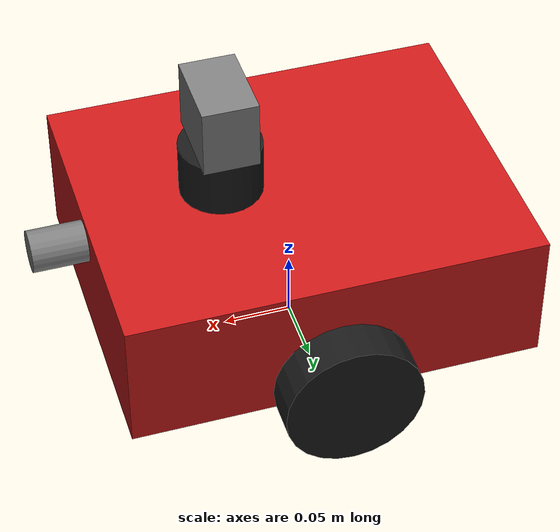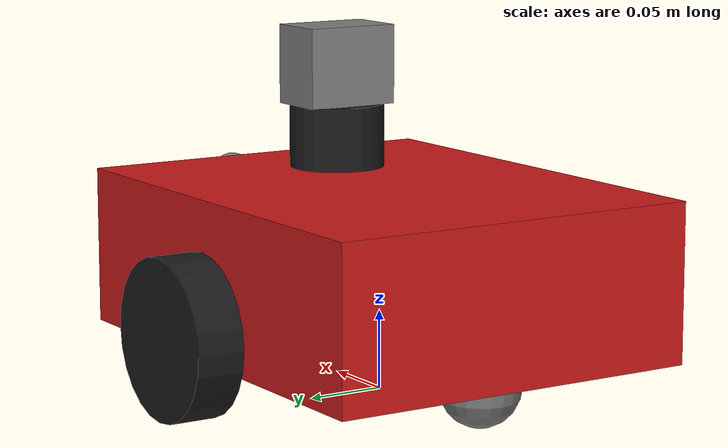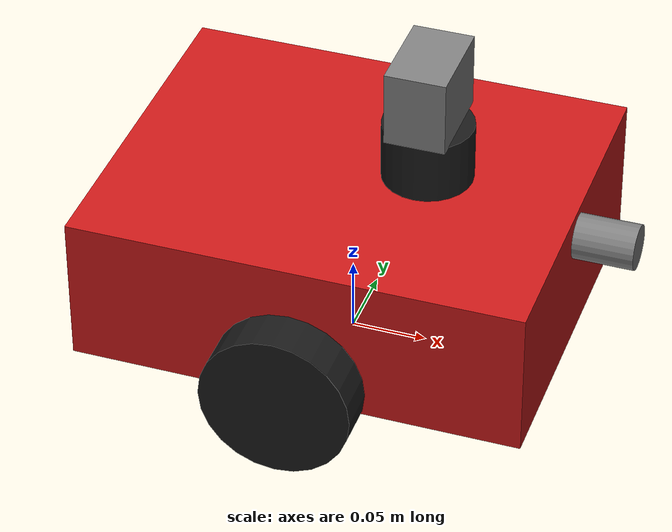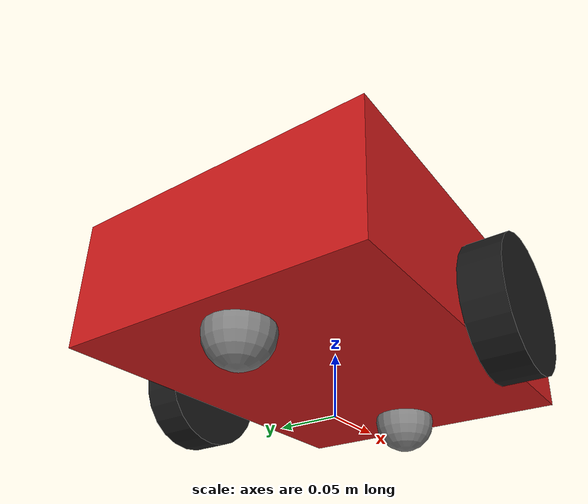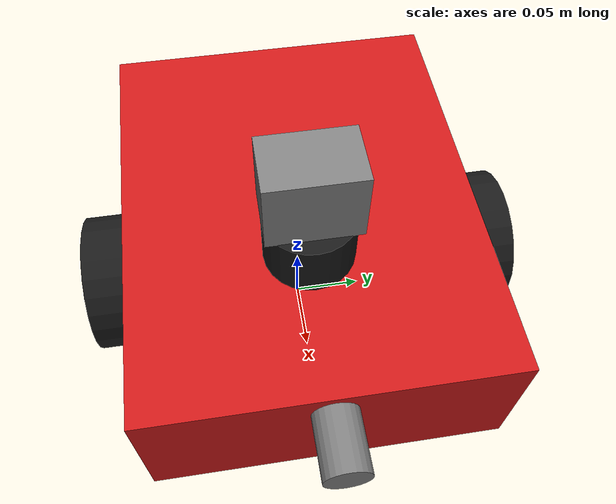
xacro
<?xml version="1.0"?>
<robot name="fire_robot" xmlns:xacro="http://www.ros.org/wiki/xacro">

  <!-- Dimensions [m]. base_link origin lies on the ground under the wheel axle. -->
  <xacro:property name="base_x" value="0.30"/>
  <xacro:property name="base_y" value="0.24"/>
  <xacro:property name="base_z" value="0.10"/>
  <xacro:property name="base_clearance" value="0.03"/>
  <xacro:property name="base_mass" value="2.0"/>
  <xacro:property name="wheel_radius" value="0.05"/>
  <xacro:property name="wheel_width" value="0.03"/>
  <xacro:property name="wheel_separation" value="0.28"/>
  <xacro:property name="wheel_mass" value="0.2"/>
  <xacro:property name="caster_radius" value="0.025"/>
  <xacro:property name="caster_x" value="-0.11"/>
  <xacro:property name="lidar_x" value="0.05"/>
  <xacro:property name="lidar_z" value="0.155"/>
  <!-- Thermal camera sits on top of the LiDAR, above its scan plane -->
  <xacro:property name="thermal_x" value="0.05"/>
  <xacro:property name="thermal_z" value="0.20"/>
  <xacro:property name="thermal_hfov" value="1.0472"/>
  <xacro:property name="nozzle_x" value="0.17"/>
  <xacro:property name="nozzle_z" value="0.11"/>

  <material name="red"><color rgba="0.8 0.1 0.1 1"/></material>
  <material name="black"><color rgba="0.1 0.1 0.1 1"/></material>
  <material name="grey"><color rgba="0.5 0.5 0.5 1"/></material>

  <!-- Dummy root without inertia (KDL does not support an inertial root link) -->
  <link name="base_footprint"/>
  <joint name="base_footprint_joint" type="fixed">
    <parent link="base_footprint"/>
    <child link="base_link"/>
  </joint>

  <!-- Base -->
  <link name="base_link">
    <visual>
      <origin xyz="0 0 ${base_clearance + base_z/2}"/>
      <geometry><box size="${base_x} ${base_y} ${base_z}"/></geometry>
      <material name="red"/>
    </visual>
    <collision>
      <origin xyz="0 0 ${base_clearance + base_z/2}"/>
      <geometry><box size="${base_x} ${base_y} ${base_z}"/></geometry>
    </collision>
    <inertial>
      <origin xyz="0 0 ${base_clearance + base_z/2}"/>
      <mass value="${base_mass}"/>
      <inertia ixx="${base_mass*(base_y*base_y + base_z*base_z)/12}" ixy="0" ixz="0"
               iyy="${base_mass*(base_x*base_x + base_z*base_z)/12}" iyz="0"
               izz="${base_mass*(base_x*base_x + base_y*base_y)/12}"/>
    </inertial>
  </link>

  <!-- Drive wheels -->
  <xacro:macro name="wheel" params="side y_sign">
    <link name="${side}_wheel_link">
      <visual>
        <origin rpy="${pi/2} 0 0"/>
        <geometry><cylinder radius="${wheel_radius}" length="${wheel_width}"/></geometry>
        <material name="black"/>
      </visual>
      <collision>
        <origin rpy="${pi/2} 0 0"/>
        <geometry><cylinder radius="${wheel_radius}" length="${wheel_width}"/></geometry>
      </collision>
      <inertial>
        <origin rpy="${pi/2} 0 0"/>
        <mass value="${wheel_mass}"/>
        <inertia ixx="${wheel_mass*(3*wheel_radius*wheel_radius + wheel_width*wheel_width)/12}" ixy="0" ixz="0"
                 iyy="${wheel_mass*(3*wheel_radius*wheel_radius + wheel_width*wheel_width)/12}" iyz="0"
                 izz="${wheel_mass*wheel_radius*wheel_radius/2}"/>
      </inertial>
    </link>
    <joint name="${side}_wheel_joint" type="continuous">
      <parent link="base_link"/>
      <child link="${side}_wheel_link"/>
      <origin xyz="0 ${y_sign*wheel_separation/2} ${wheel_radius}"/>
      <axis xyz="0 1 0"/>
    </joint>
    <gazebo reference="${side}_wheel_link">
      <mu1>1.0</mu1>
      <mu2>1.0</mu2>
    </gazebo>
  </xacro:macro>

  <xacro:wheel side="left" y_sign="1"/>
  <xacro:wheel side="right" y_sign="-1"/>

  <!-- Passive casters (frictionless spheres), front and rear: the wheels sit at the
       center of mass, so a single caster lets the base tip forward when braking -->
  <xacro:macro name="caster" params="name x">
    <link name="${name}_link">
      <visual>
        <geometry><sphere radius="${caster_radius}"/></geometry>
        <material name="grey"/>
      </visual>
      <collision>
        <geometry><sphere radius="${caster_radius}"/></geometry>
      </collision>
      <inertial>
        <mass value="0.05"/>
        <inertia ixx="1e-5" ixy="0" ixz="0" iyy="1e-5" iyz="0" izz="1e-5"/>
      </inertial>
    </link>
    <joint name="${name}_joint" type="fixed">
      <parent link="base_link"/>
      <child link="${name}_link"/>
      <origin xyz="${x} 0 ${caster_radius}"/>
    </joint>
    <gazebo reference="${name}_link">
      <mu1>0.0</mu1>
      <mu2>0.0</mu2>
    </gazebo>
  </xacro:macro>

  <xacro:caster name="caster" x="${caster_x}"/>
  <xacro:caster name="front_caster" x="${-caster_x}"/>

  <!-- 2D LiDAR -->
  <link name="lidar_link">
    <visual>
      <geometry><cylinder radius="0.03" length="0.04"/></geometry>
      <material name="black"/>
    </visual>
  </link>
  <joint name="lidar_joint" type="fixed">
    <parent link="base_link"/>
    <child link="lidar_link"/>
    <origin xyz="${lidar_x} 0 ${lidar_z}"/>
  </joint>

  <gazebo reference="lidar_link">
    <sensor name="lidar" type="gpu_lidar">
      <gz_frame_id>lidar_link</gz_frame_id>
      <topic>/scan</topic>
      <!-- 5 Hz / 180 beams: enough for Nav2 + fire ranging; lighter GPU load on Orin -->
      <update_rate>5</update_rate>
      <always_on>true</always_on>
      <visualize>false</visualize>
      <lidar>
        <scan>
          <horizontal>
            <samples>180</samples>
            <resolution>1</resolution>
            <min_angle>-3.14159</min_angle>
            <max_angle>3.10669</max_angle>
          </horizontal>
        </scan>
        <range>
          <min>0.12</min>
          <max>8.0</max>
          <resolution>0.01</resolution>
        </range>
        <noise>
          <type>gaussian</type>
          <mean>0.0</mean>
          <stddev>0.01</stddev>
        </noise>
      </lidar>
    </sensor>
  </gazebo>

  <!-- Thermal camera (looks along +x of thermal_link) -->
  <link name="thermal_link">
    <visual>
      <geometry><box size="0.04 0.06 0.05"/></geometry>
      <material name="grey"/>
    </visual>
  </link>
  <joint name="thermal_joint" type="fixed">
    <parent link="base_link"/>
    <child link="thermal_link"/>
    <origin xyz="${thermal_x} 0 ${thermal_z}"/>
  </joint>

  <gazebo reference="thermal_link">
    <sensor name="thermal_camera" type="thermal">
      <gz_frame_id>thermal_link</gz_frame_id>
      <topic>/thermal/image</topic>
      <!-- ~10 Hz 내외 (AGENTS.md); 5 Hz keeps confirm_frames=3 under 1 s sim time -->
      <update_rate>5</update_rate>
      <always_on>true</always_on>
      <visualize>false</visualize>
      <camera>
        <horizontal_fov>${thermal_hfov}</horizontal_fov>
        <image>
          <width>160</width>
          <height>120</height>
          <!-- L16: pixel value = temperature / 0.01 K -->
          <format>L16</format>
        </image>
        <clip>
          <near>0.1</near>
          <far>10.0</far>
        </clip>
      </camera>
    </sensor>
  </gazebo>

  <!-- Extinguisher nozzle at the front, aimed forward (+x) -->
  <link name="nozzle_link">
    <visual>
      <origin rpy="0 ${pi/2} 0"/>
      <geometry><cylinder radius="0.015" length="0.04"/></geometry>
      <material name="grey"/>
    </visual>
  </link>
  <joint name="nozzle_joint" type="fixed">
    <parent link="base_link"/>
    <child link="nozzle_link"/>
    <origin xyz="${nozzle_x} 0 ${nozzle_z}"/>
  </joint>

  <!-- Spray particles are a separate model (fire_mission/models/spray.sdf) that the
       spray_nozzle node spawns in front of the nozzle while spraying. -->

  <!-- Gazebo systems: odom frame -> base_footprint, wheel joint states -->
  <gazebo>
    <plugin filename="gz-sim-diff-drive-system" name="gz::sim::systems::DiffDrive">
      <left_joint>left_wheel_joint</left_joint>
      <right_joint>right_wheel_joint</right_joint>
      <wheel_separation>${wheel_separation}</wheel_separation>
      <wheel_radius>${wheel_radius}</wheel_radius>
      <max_linear_acceleration>1.0</max_linear_acceleration>
      <max_angular_acceleration>3.0</max_angular_acceleration>
      <topic>/cmd_vel</topic>
      <odom_topic>/odom</odom_topic>
      <tf_topic>/tf</tf_topic>
      <frame_id>odom</frame_id>
      <child_frame_id>base_footprint</child_frame_id>
      <odom_publish_frequency>10</odom_publish_frequency>
    </plugin>
    <plugin filename="gz-sim-joint-state-publisher-system" name="gz::sim::systems::JointStatePublisher">
      <topic>/joint_states</topic>
      <joint_name>left_wheel_joint</joint_name>
      <joint_name>right_wheel_joint</joint_name>
    </plugin>
  </gazebo>

</robot>
